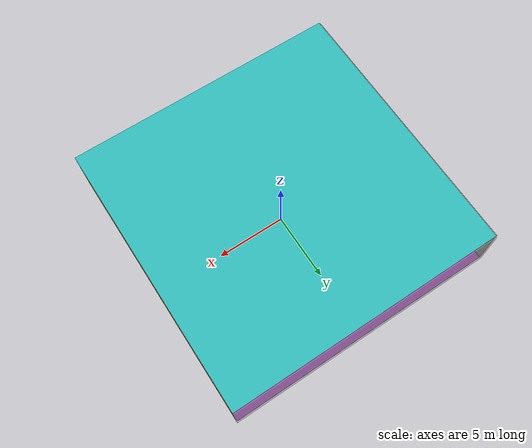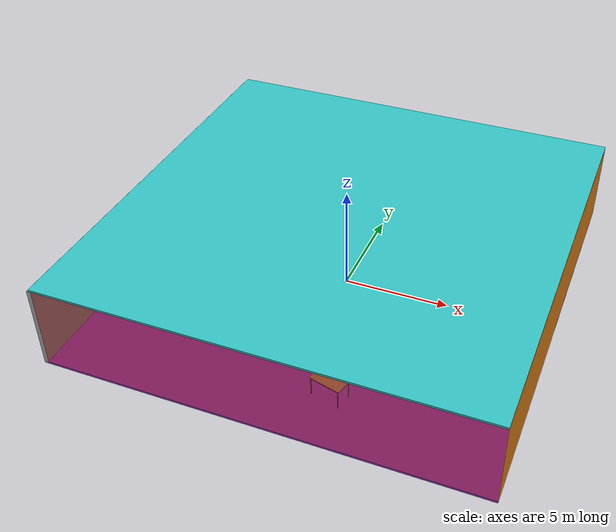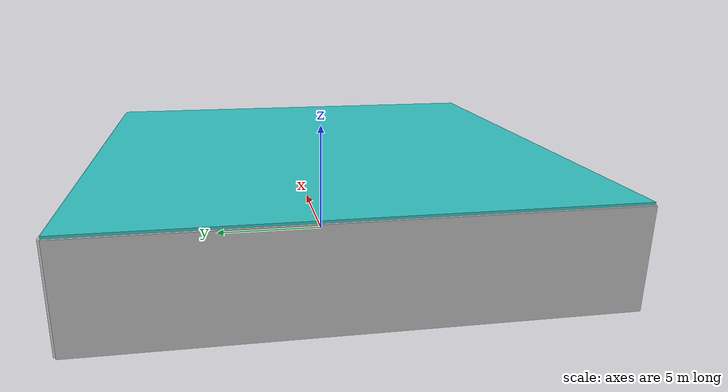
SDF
<sdf version="1.4">
 <world name="default">
  <physics type="ode">
   <max_step_size>0.001</max_step_size>
   <real_time_factor>1</real_time_factor>
   <real_time_update_rate>1000</real_time_update_rate>
   <gravity>0 0 -9.8</gravity>
  </physics>
  <scene><ambient>0.4 0.4 0.4 1</ambient><background>0.7 0.7 0.7 1</background><shadows>1</shadows></scene>
  <model name="Surrounding">
   <static>1</static>
   <link name="Ceiling">
    <collision name="Ceiling_Collision"><geometry><box><size>20 20 0.1</size></box></geometry></collision>
    <visual name="Ceiling_Visual">
     <geometry><box><size>20 20 0.1</size></box></geometry>
     <material>
      <script>
       <uri>file://media/materials/scripts/gazebo.material</uri>
       <name>Gazebo/TurquoiseGlowOutline</name>
      </script>
     </material>
    </visual>
    <pose>0 0 4.05 0 0 0</pose>
   </link>
   <link name="Wall_South">
    <collision name="Wall_South_Collision">
     <geometry><box><size>20 0 4</size></box></geometry>
     <pose>0 0 2 0 -0 0</pose>
    </collision>
    <visual name="Wall_South_Visual">
     <pose>0 0 2 0 -0 0</pose>
     <geometry><box><size>20 0 4</size></box></geometry>
     <material>
      <script><uri>file://media/materials/scripts/gazebo.material</uri><name>Gazebo/RedTransparent</name></script>
     </material>
    </visual>
    <velocity_decay><linear>0</linear><angular>0</angular></velocity_decay>
    <pose>0 -10 0 0 -0 0</pose>
   </link>
   <link name="Wall_East">
    <collision name="Wall_21_Collision">
     <geometry><box><size>20 0 4</size></box></geometry>
     <pose>0 0 2 0 -0 0</pose>
    </collision>
    <visual name="Wall_21_Visual">
     <pose>0 0 2 0 -0 0</pose>
     <geometry><box><size>20 0 4</size></box></geometry>
     <material>
      <script><uri>file://media/materials/scripts/gazebo.material</uri><name>Gazebo/Orange</name></script>
     </material>
    </visual>
    <velocity_decay><linear>0</linear><angular>0</angular></velocity_decay>
    <pose>10 0 0 0 -0 1.5708</pose>
   </link>
   <link name="Wall_North">
    <collision name="Wall_22_Collision">
     <geometry><box><size>20 0.2 4</size></box></geometry>
     <pose>0 0 2 0 -0 0</pose>
    </collision>
    <visual name="Wall_22_Visual">
     <pose>0 0 2 0 -0 0</pose>
     <geometry><box><size>20 0.2 4</size></box></geometry>
     <material>
      <script><uri>file://media/materials/scripts/gazebo.material</uri><name>Gazebo/GreyTransparent</name></script>
     </material>
    </visual>
    <velocity_decay><linear>0</linear><angular>0</angular></velocity_decay>
    <pose>0 10 0 0 -0 0</pose>
   </link>
   <link name="Wall_West">
    <collision name="Wall_23_Collision">
     <geometry><box><size>20 0.2 4</size></box></geometry>
     <pose>0 0 2 0 -0 0</pose>
    </collision>
    <visual name="Wall_23_Visual">
     <pose>0 0 2 0 -0 0</pose>
     <geometry><box><size>20 0.2 4</size></box></geometry>
     <material>
      <script><uri>file://media/materials/scripts/gazebo.material</uri><name>Gazebo/PioneerBody</name></script>
     </material>
    </visual>
    <velocity_decay><linear>0</linear><angular>0</angular></velocity_decay>
    <pose>-10 0 0 0 0 -1.5708</pose>
   </link>
   <link name="Ground_link">
    <collision name="collision">
     <pose>0 0 .05 0 -0 0</pose>
     <geometry><box><size>20 20 0.1</size></box></geometry>
    </collision>
    <visual name="visual">
     <pose>0 0 .05 0 -0 0</pose>
     <geometry><box><size>20 20 0.1</size></box></geometry>
     <material>
      <script><uri>file://media/materials/scripts/gazebo.material</uri><name>Gazebo/Purple</name></script>
     </material>
    </visual>
   </link>
   <static>1</static>
  </model>
  <spherical_coordinates>
   <surface_model>EARTH_WGS84</surface_model>
   <latitude_deg>0</latitude_deg>
   <longitude_deg>0</longitude_deg>
   <elevation>0</elevation>
   <heading_deg>0</heading_deg>
  </spherical_coordinates>
  <light name="lightball_0" type="diffuse">
   <diffuse>0.8 0.8 0.8 1</diffuse>
   <specular>0.2 0.2 0.2 1</specular>
   <attenuation>
    <range>100</range>
    <constant>0.7</constant>
    <linear>0.01</linear>
    <quadratic>0.001</quadratic>
   </attenuation>
   <direction>-0.5 0.1 -0.9</direction>
   <pose>3.94418087481 -8.51412354375 3.57806979531 0 0 0</pose>
  </light>
  <light name="lightball_1" type="diffuse">
   <diffuse>0.8 0.8 0.8 1</diffuse>
   <specular>0.2 0.2 0.2 1</specular>
   <attenuation>
    <range>100</range>
    <constant>0.7</constant>
    <linear>0.01</linear>
    <quadratic>0.001</quadratic>
   </attenuation>
   <direction>-0.5 0.1 -0.9</direction>
   <pose>-7.70599378272 -7.41495925245 0.739843366507 0 0 0</pose>
  </light>
  <light name="lightball_2" type="diffuse">
   <diffuse>0.8 0.8 0.8 1</diffuse>
   <specular>0.2 0.2 0.2 1</specular>
   <attenuation>
    <range>100</range>
    <constant>0.7</constant>
    <linear>0.01</linear>
    <quadratic>0.001</quadratic>
   </attenuation>
   <direction>-0.5 0.1 -0.9</direction>
   <pose>-1.92385492378 -3.80727139843 0.65703348104 0 0 0</pose>
  </light>
  <light name="lightball_3" type="diffuse">
   <diffuse>0.8 0.8 0.8 1</diffuse>
   <specular>0.2 0.2 0.2 1</specular>
   <attenuation>
    <range>100</range>
    <constant>0.7</constant>
    <linear>0.01</linear>
    <quadratic>0.001</quadratic>
   </attenuation>
   <direction>-0.5 0.1 -0.9</direction>
   <pose>-8.74813757657 1.79443019744 1.3730824911 0 0 0</pose>
  </light>
  <light name="lightball_4" type="diffuse">
   <diffuse>0.8 0.8 0.8 1</diffuse>
   <specular>0.2 0.2 0.2 1</specular>
   <attenuation>
    <range>100</range>
    <constant>0.7</constant>
    <linear>0.01</linear>
    <quadratic>0.001</quadratic>
   </attenuation>
   <direction>-0.5 0.1 -0.9</direction>
   <pose>1.58007582004 -7.0169109239 2.70457117805 0 0 0</pose>
  </light>
  <light name="lightball_5" type="diffuse">
   <diffuse>0.8 0.8 0.8 1</diffuse>
   <specular>0.2 0.2 0.2 1</specular>
   <attenuation>
    <range>100</range>
    <constant>0.7</constant>
    <linear>0.01</linear>
    <quadratic>0.001</quadratic>
   </attenuation>
   <direction>-0.5 0.1 -0.9</direction>
   <pose>-8.44212633023 -9.84967612824 3.12448491534 0 0 0</pose>
  </light>
  <light name="lightball_6" type="diffuse">
   <diffuse>0.8 0.8 0.8 1</diffuse>
   <specular>0.2 0.2 0.2 1</specular>
   <attenuation>
    <range>100</range>
    <constant>0.7</constant>
    <linear>0.01</linear>
    <quadratic>0.001</quadratic>
   </attenuation>
   <direction>-0.5 0.1 -0.9</direction>
   <pose>4.75478045217 -0.64933136491 0.819371374234 0 0 0</pose>
  </light>
  <light name="lightball_7" type="diffuse">
   <diffuse>0.8 0.8 0.8 1</diffuse>
   <specular>0.2 0.2 0.2 1</specular>
   <attenuation>
    <range>100</range>
    <constant>0.7</constant>
    <linear>0.01</linear>
    <quadratic>0.001</quadratic>
   </attenuation>
   <direction>-0.5 0.1 -0.9</direction>
   <pose>-7.9787221213 6.34804568913 1.89621910575 0 0 0</pose>
  </light>
  <light name="lightball_8" type="diffuse">
   <diffuse>0.8 0.8 0.8 1</diffuse>
   <specular>0.2 0.2 0.2 1</specular>
   <attenuation>
    <range>100</range>
    <constant>0.7</constant>
    <linear>0.01</linear>
    <quadratic>0.001</quadratic>
   </attenuation>
   <direction>-0.5 0.1 -0.9</direction>
   <pose>-6.8332955558 -2.05221568718 0.587205863802 0 0 0</pose>
  </light>
  <include><uri>model://cabinet</uri><pose>-7.51151129647 7.6982894704 0 0 0 3.11615675768</pose></include>
  <include><uri>model://table</uri><pose>2.15159791246 -7.33297059247 0 0 0 2.89373470852</pose></include>
  <include>
   <uri>model://construction_cone</uri>
   <pose>1.23124477882 0.807926352262 0 0 0 2.23739083124</pose>
  </include>
  <include><uri>model://cabinet</uri><pose>4.50753963416 -3.97020465433 0 0 0 0.927159166978</pose></include>
 </world>
</sdf>

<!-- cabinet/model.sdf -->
<sdf version="1.5">
  <model name="cabinet">
    <static>true</static>
    <link name="cabinet_bottom_plate">
      <inertial>
        <pose>0 0 -1 0 0 0</pose>
        <inertia>
          <ixx>2.050000</ixx>
          <ixy>0</ixy>
          <ixz>0</ixz>
          <iyy>2.050000</iyy>
          <iyz>0</iyz>
          <izz>2.050000</izz>
        </inertia>
        <mass>25.000000</mass>
      </inertial>
      <collision name="cabinet_bottom_plate_geom">
        <pose>0 0 0.010000 0 0 0</pose>
        <geometry>
          <box>
            <size>0.450000 0.450000 0.020000</size>
          </box>
        </geometry>
      </collision>
      <visual name="cabinet_bottom_plate_geom_visual">
        <pose>0 0 0.010000 0 0 0</pose>
        <geometry>
          <box>
            <size>0.450000 0.450000 0.020000</size>
          </box>
        </geometry>
        <material>
          <script>
            <uri>model://media/materials/scripts/gazebo.material</uri>
            <name>Gazebo/Wood</name>
          </script>
        </material>
      </visual>
      <collision name="cabinet_bottom_plate_geom_cabinet_back_plate">
        <pose>0.235000 0 0.510000 0 0 0</pose>
        <geometry>
          <box>
            <size>0.020000 0.450000 1.020000</size>
          </box>
        </geometry>
      </collision>
      <visual name="cabinet_bottom_plate_geom_cabinet_back_plate_visual">
        <pose>0.235000 0 0.510000 0 0 0</pose>
        <geometry>
          <box>
            <size>0.020000 0.450000 1.020000</size>
          </box>
        </geometry>
        <material>
          <script>
            <uri>model://media/materials/scripts/gazebo.material</uri>
            <name>Gazebo/Wood</name>
          </script>
        </material>
      </visual>
      <collision name="cabinet_bottom_plate_geom_cabinet_left_plate">
        <pose>0 0.235000 0.510000 0 0 0</pose>
        <geometry>
          <box>
            <size>0.450000 0.020000 1.020000</size>
          </box>
        </geometry>
      </collision>
      <visual name="cabinet_bottom_plate_geom_cabinet_left_plate_visual">
        <pose>0 0.235000 0.510000 0 0 0</pose>
        <geometry>
          <box>
            <size>0.450000 0.020000 1.020000</size>
          </box>
        </geometry>
        <material>
          <script>
            <uri>model://media/materials/scripts/gazebo.material</uri>
            <name>Gazebo/Wood</name>
          </script>
        </material>
      </visual>
      <collision name="cabinet_bottom_plate_geom_cabinet_middle_plate">
        <pose>0 0 0.510000 0 0 0</pose>
        <geometry>
          <box>
            <size>0.450000 0.450000 0.020000</size>
          </box>
        </geometry>
      </collision>
      <visual name="cabinet_bottom_plate_geom_cabinet_middle_plate_visual">
        <pose>0 0 0.510000 0 0 0</pose>
        <geometry>
          <box>
            <size>0.450000 0.450000 0.020000</size>
          </box>
        </geometry>
        <material>
          <script>
            <uri>model://media/materials/scripts/gazebo.material</uri>
            <name>Gazebo/Wood</name>
          </script>
        </material>
      </visual>
      <collision name="cabinet_bottom_plate_geom_cabinet_right_plate">
        <pose>0 -0.235000 0.510000 0 0 0</pose>
        <geometry>
          <box>
            <size>0.450000 0.020000 1.020000</size>
          </box>
        </geometry>
      </collision>
      <visual name="cabinet_bottom_plate_geom_cabinet_right_plate_visual">
        <pose>0 -0.235000 0.510000 0 0 0</pose>
        <geometry>
          <box>
            <size>0.450000 0.020000 1.020000</size>
          </box>
        </geometry>
        <material>
          <script>
            <uri>model://media/materials/scripts/gazebo.material</uri>
            <name>Gazebo/Wood</name>
          </script>
        </material>
      </visual>
      <collision name="cabinet_bottom_plate_geom_cabinet_top_plate">
        <pose>0 0 1.010000 0 0 0</pose>
        <geometry>
          <box>
            <size>0.450000 0.450000 0.020000</size>
          </box>
        </geometry>
      </collision>
      <visual name="cabinet_bottom_plate_geom_cabinet_top_plate_visual">
        <pose>0 0 1.010000 0 0 0</pose>
        <geometry>
          <box>
            <size>0.450000 0.450000 0.020000</size>
          </box>
        </geometry>
        <material>
          <script>
            <uri>model://media/materials/scripts/gazebo.material</uri>
            <name>Gazebo/Wood</name>
          </script>
        </material>
      </visual>
    </link>
  </model>
</sdf>

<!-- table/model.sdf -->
<sdf version="1.5">
  <model name="table">
    <static>true</static>
    <link name="link">
      <collision name="surface">
        <pose>0 0 1.0 0 0 0</pose>
        <geometry>
          <box>
            <size>1.5 0.8 0.03</size>
          </box>
        </geometry>
        <surface>
          <friction>
            <ode>
              <mu>0.6</mu>
              <mu2>0.6</mu2>
            </ode>
          </friction>
        </surface>
      </collision>
      <visual name="visual1">
        <pose>0 0 1.0 0 0 0</pose>
        <geometry>
          <box>
            <size>1.5 0.8 0.03</size>
          </box>
        </geometry>
        <material>
          <script>
            <uri>model://media/materials/scripts/gazebo.material</uri>
            <name>Gazebo/Wood</name>
          </script>
        </material>
      </visual>
      <collision name="front_left_leg">
        <pose>0.68 0.38 0.5 0 0 0</pose>
        <geometry>
          <cylinder>
            <radius>0.02</radius>
            <length>1.0</length>
          </cylinder>
        </geometry>
      </collision>
      <visual name="front_left_leg">
        <pose>0.68 0.38 0.5 0 0 0</pose>
        <geometry>
          <cylinder>
            <radius>0.02</radius>
            <length>1.0</length>
          </cylinder>
        </geometry>
        <material>
          <script>
            <uri>model://media/materials/scripts/gazebo.material</uri>
            <name>Gazebo/Grey</name>
          </script>
        </material>
      </visual>
      <collision name="front_right_leg">
        <pose>0.68 -0.38 0.5 0 0 0</pose>
        <geometry>
          <cylinder>
            <radius>0.02</radius>
            <length>1.0</length>
          </cylinder>
        </geometry>
      </collision>
      <visual name="front_right_leg">
        <pose>0.68 -0.38 0.5 0 0 0</pose>
        <geometry>
          <cylinder>
            <radius>0.02</radius>
            <length>1.0</length>
          </cylinder>
        </geometry>
        <material>
          <script>
            <uri>model://media/materials/scripts/gazebo.material</uri>
            <name>Gazebo/Grey</name>
          </script>
        </material>
      </visual>
      <collision name="back_right_leg">
        <pose>-0.68 -0.38 0.5 0 0 0</pose>
        <geometry>
          <cylinder>
            <radius>0.02</radius>
            <length>1.0</length>
          </cylinder>
        </geometry>
      </collision>
      <visual name="back_right_leg">
        <pose>-0.68 -0.38 0.5 0 0 0</pose>
        <geometry>
          <cylinder>
            <radius>0.02</radius>
            <length>1.0</length>
          </cylinder>
        </geometry>
        <material>
          <script>
            <uri>model://media/materials/scripts/gazebo.material</uri>
            <name>Gazebo/Grey</name>
          </script>
        </material>
      </visual>
      <collision name="back_left_leg">
        <pose>-0.68 0.38 0.5 0 0 0</pose>
        <geometry>
          <cylinder>
            <radius>0.02</radius>
            <length>1.0</length>
          </cylinder>
        </geometry>
      </collision>
      <visual name="back_left_leg">
        <pose>-0.68 0.38 0.5 0 0 0</pose>
        <geometry>
          <cylinder>
            <radius>0.02</radius>
            <length>1.0</length>
          </cylinder>
        </geometry>
        <material>
          <script>
            <uri>model://media/materials/scripts/gazebo.material</uri>
            <name>Gazebo/Grey</name>
          </script>
        </material>
      </visual>
    </link>
  </model>
</sdf>

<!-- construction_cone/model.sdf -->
<sdf version="1.5">
  <model name="Construction Cone">
    <link name="link">
      <collision name="collision">
        <geometry>
          <mesh>
            <scale>10 10 10</scale>
            <uri>file://isr-testbed/construction_cone/meshes/construction_cone.dae</uri>
          </mesh>
        </geometry>
      </collision>
      <visual name="visual">
        <geometry>
          <mesh>
            <scale>10 10 10</scale>
            <uri>file://isr-testbed/construction_cone/meshes/construction_cone.dae</uri>
          </mesh>
        </geometry>
      </visual>
    </link>
  </model>
</sdf>
